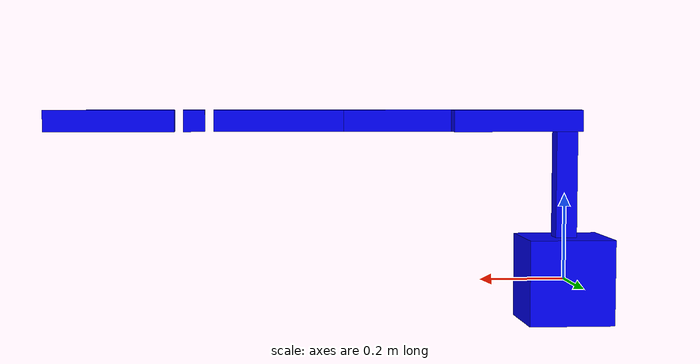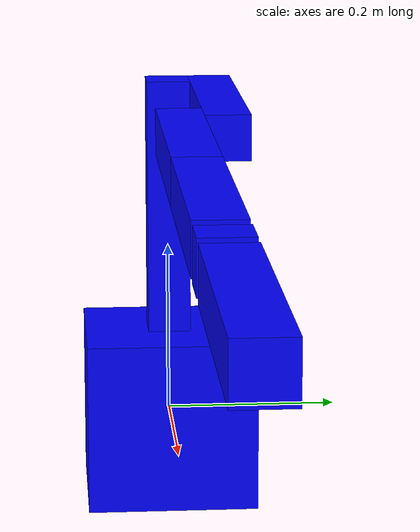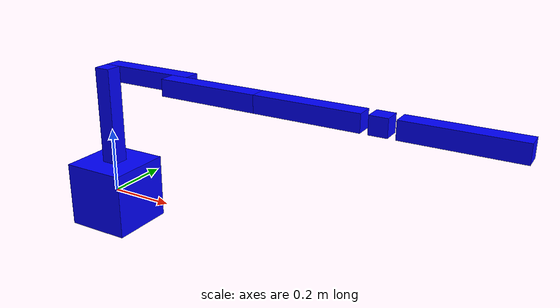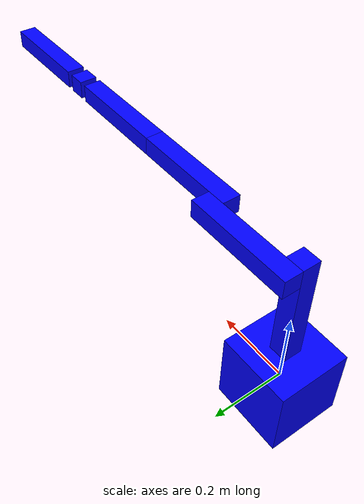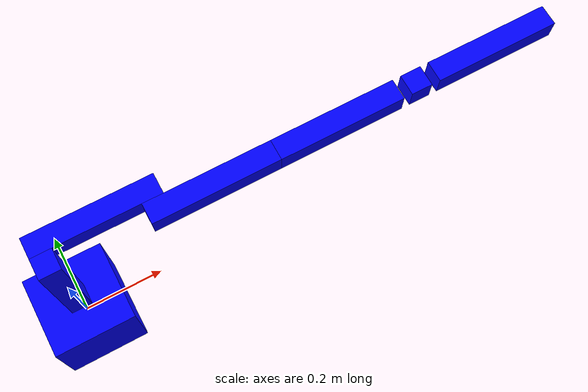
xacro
<?xml version="1.0"?>
<robot name="six_dof_manipulator" xmlns:xacro="http://ros.org/wiki/xacro">
  <!-- Macro for a box-shaped link -->
  <xacro:macro name="box_link" params="name length width height mass ixx iyy izz dx dy dz">
    <link name="${name}">
      <visual>
        <origin xyz="${dx} ${dy} ${dz}" rpy="0 0 0"/>
        <geometry>
          <box size="${length} ${width} ${height}"/>
        </geometry>
        <material name="blue">
          <color rgba="0 0 1 1"/>
        </material>
      </visual>
      <collision>
        <origin xyz="${dx} ${dy} ${dz}" rpy="0 0 0"/>
        <geometry>
          <box size="${length} ${width} ${height}"/>
        </geometry>
      </collision>
      <inertial>
        <origin xyz="${dx} ${dy} ${dz}" rpy="0 0 0"/>
        <mass value="${mass}"/>
        <inertia ixx="${ixx}" ixy="0.0" ixz="0.0"
                 iyy="${iyy}" iyz="0.0"
                 izz="${izz}"/>
      </inertial>
    </link>
  </xacro:macro>

  <!-- Base link -->
  <xacro:box_link name="base_link"
    length="0.2" width="0.2" height="0.2"
    mass="2000.0" ixx="100" iyy="100" izz="100"
    dx="0.0" dy="0.0" dz="0.0"/>

  <!-- Joint 1 -->
  <xacro:box_link name="link1" length="0.05" width="0.05" height="0.3" mass="0.1" ixx="0.01" iyy="0.01" izz="0.01" dx="0.0" dy="0.0" dz="0.15"/>
  <!-- Mover el centro del hijo desde el joint -->
  <joint name="joint1" type="revolute">
    <parent link="base_link"/>
    <child  link="link1"/>
    <origin xyz="0 0 0.1" rpy="0 0 0"/>   <!-- Distancias desde el centro del padre -->
    <axis  xyz="0 0 1"/>
    <limit lower="-1.57" upper="1.57" effort="10.0" velocity="1.0"/>
    <dynamics damping="0.1"/>
  </joint>

  <!-- Joint 2 -->
  <xacro:box_link name="link2" length="0.3" width="0.05" height="0.05" mass="0.1" ixx="0.01" iyy="0.01" izz="0.01" dx="0.125" dy="0.025" dz="0.0"/>
  <joint name="joint2" type="revolute">
    <parent link="link1"/>
    <child  link="link2"/>
    <origin xyz="0.0 0.025 0.275" rpy="0 0 0"/>   <!-- Distancias joint anterior¿? -->
    <axis  xyz="0 1 0"/>
    <limit lower="-1.57" upper="1.57" effort="10.0" velocity="1.0"/>
    <dynamics damping="10"/>
  </joint>

  <!-- Joint 3 -->
  <xacro:box_link name="link3" length="0.3" width="0.05" height="0.05" mass="0.1" ixx="0.01" iyy="0.01" izz="0.00" dx="0.125" dy="-0.025" dz="0.0"/>
  <joint name="joint3" type="revolute">
    <parent link="link2"/>
    <child  link="link3"/>
    <origin xyz="0.25 0.0 0.0" rpy="0 0 0"/>
    <axis  xyz="0 -1 0"/>
    <limit lower="-1.57" upper="1.57" effort="10.0" velocity="1.0"/>
    <dynamics damping="10"/>
  </joint>

  <!-- Joint 4 -->
  <xacro:box_link name="link4" length="0.3" width="0.05" height="0.05" mass="0.1" ixx="0.01" iyy="0.01" izz="0.01" dx="0.125" dy="0.0" dz="0.0"/>
  <joint name="joint4" type="revolute">
    <parent link="link3"/>
    <child  link="link4"/>
    <origin xyz="0.3 -0.025 0.0" rpy="0 0 0"/>
    <axis  xyz="1 0 0"/>
    <limit lower="-1.57" upper="1.57" effort="10.0" velocity="1.0"/>
    <dynamics damping="10"/>
  </joint>

  <!-- Joint 5 -->
  <xacro:box_link name="link5" length="0.05" width="0.05" height="0.05" mass="0.1" ixx="0.01" iyy="0.01" izz="0.01" dx="0.0" dy="0.0" dz="0.0"/>
  <joint name="joint5" type="revolute">
    <parent link="link4"/>
    <child  link="link5"/>
    <origin xyz="0.32 0.0 0.0" rpy="0 0 0"/>
    <axis  xyz="0 1 0"/>
    <limit lower="-1.57" upper="1.57" effort="10.0" velocity="1.0"/>
    <dynamics damping="10"/>
  </joint>

  <!-- Joint 6 -->
  <xacro:box_link name="link6" length="0.3" width="0.05" height="0.05" mass="0.1" ixx="0.01" iyy="0.01" izz="0.01" dx="0.15" dy="0.0" dz="0.0"/>
  <joint name="joint6" type="revolute">
    <parent link="link5"/>
    <child  link="link6"/>
    <origin xyz="0.045 0.0 0.0" rpy="0 0 0"/>
    <axis  xyz="1 0 0"/>
    <limit lower="-1.57" upper="1.57" effort="10.0" velocity="1.0"/>
    <dynamics damping="10"/>
  </joint>

  <!-- Tell Gazebo to load the ROS2 joint_state_publisher plugin -->
  <gazebo>
    <plugin name="joint_state_pub"
            filename="libgazebo_ros_joint_state_publisher.so">
      <joint_name>joint1</joint_name>
      <joint_name>joint2</joint_name>
      <joint_name>joint3</joint_name>
      <joint_name>joint4</joint_name>
      <joint_name>joint5</joint_name>
      <joint_name>joint6</joint_name>
      <!-- How fast to publish (Hz) -->
      <publish_rate>50.0</publish_rate>
    </plugin>

    <plugin name="manipulator_torque" filename="libmanipulator_torque_plugin.so">
      <ros_topic>/desired_torques</ros_topic>
    </plugin>
  </gazebo>

  <!-- (Optional) Re-add Gazebo plugin here once visuals verify -->
</robot>
